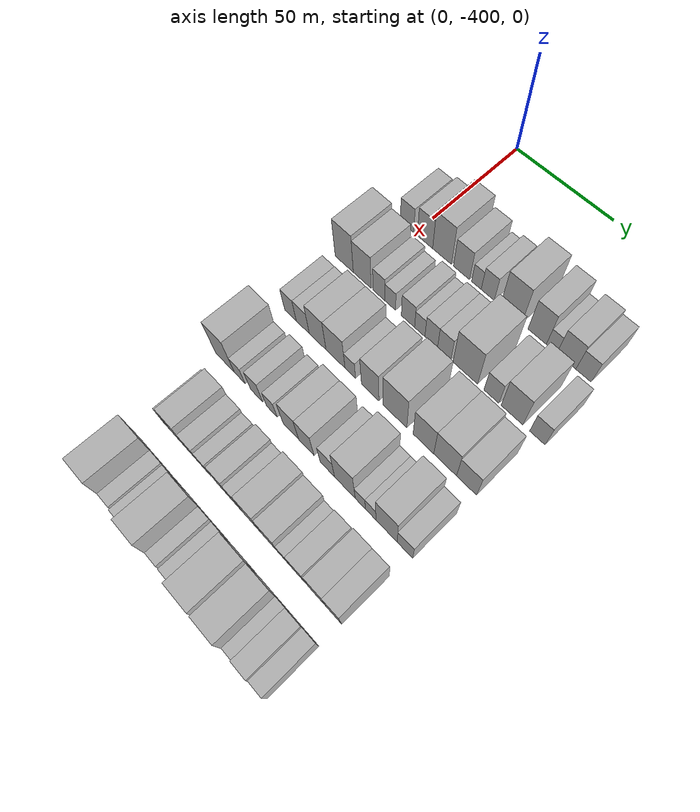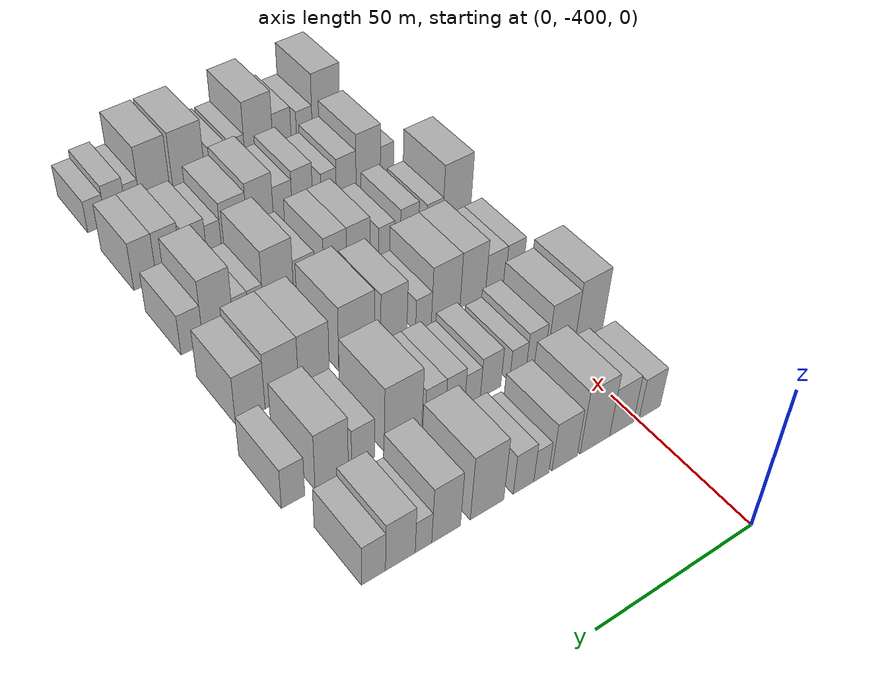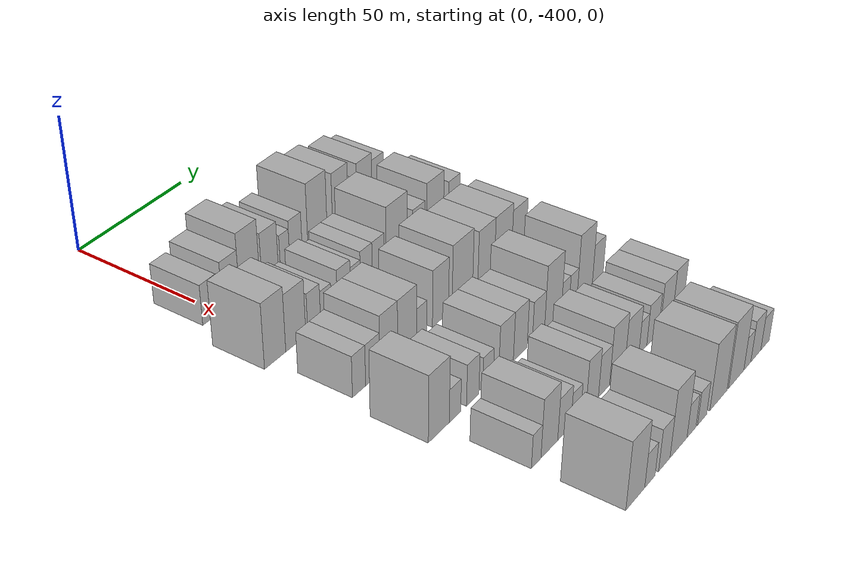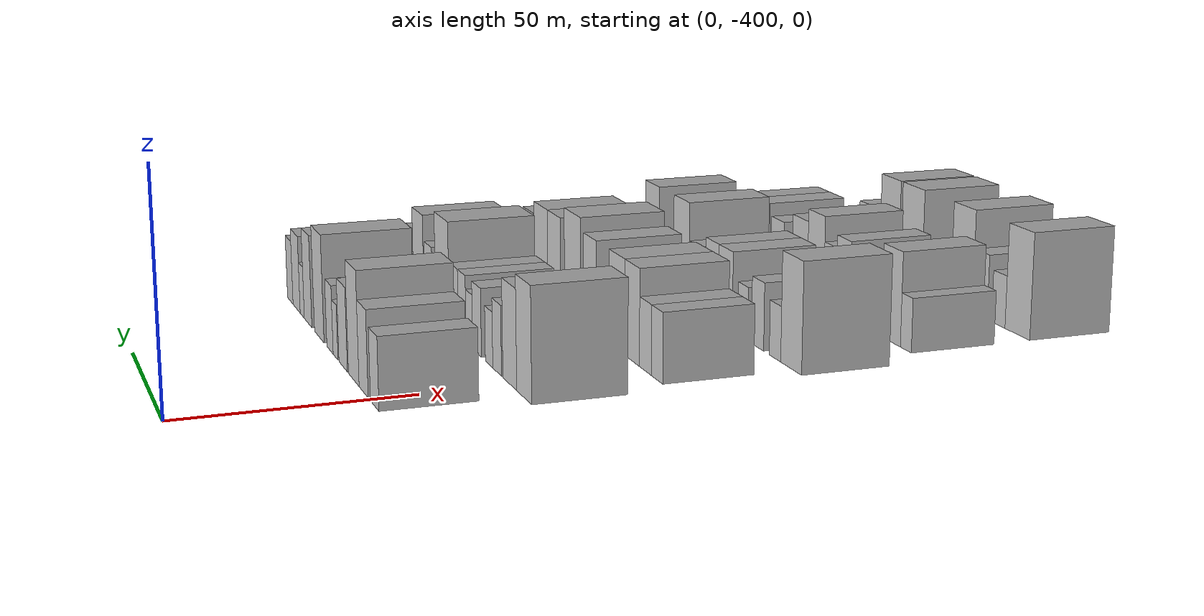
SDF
<sdf version="1.6">
 <world name="default">
  <model name="building_13">
   <static>1</static>
   <pose>50.0000 -404.1647 0 0.000000 0.000000 0.000000</pose>
   <link name="link">
    <pose>0 0 7.50 0 0 0</pose>
    <collision name="collision"><geometry><box><size>20.0000 7.3594 15.0000</size></box></geometry></collision>
    <visual name="visual">
     <cast_shadows>0</cast_shadows>
     <geometry><box><size>20.0000 7.3594 15.0000</size></box></geometry>
     <material>
      <script>
       <uri>model://HANNAS_wall/materials/scripts</uri>
       <uri>model://HANNAS_wall/materials/textures</uri>
       <name>vrc/HANNAS_wall</name>
      </script>
     </material>
    </visual>
   </link>
  </model>
  <model name="building_14">
   <static>1</static>
   <pose>50.0000 -394.3935 0 0.000000 0.000000 0.000000</pose>
   <link name="link">
    <pose>0 0 9.00 0 0 0</pose>
    <collision name="collision"><geometry><box><size>20.0000 8.1831 18.0000</size></box></geometry></collision>
    <visual name="visual">
     <cast_shadows>0</cast_shadows>
     <geometry><box><size>20.0000 8.1831 18.0000</size></box></geometry>
     <material>
      <script>
       <uri>model://HANNAS_wall/materials/scripts</uri>
       <uri>model://HANNAS_wall/materials/textures</uri>
       <name>vrc/HANNAS_wall</name>
      </script>
     </material>
    </visual>
   </link>
  </model>
  <model name="building_15">
   <static>1</static>
   <pose>50.0000 -385.3298 0 0.000000 0.000000 0.000000</pose>
   <link name="link">
    <pose>0 0 12.00 0 0 0</pose>
    <collision name="collision"><geometry><box><size>20.0000 9.9443 24.0000</size></box></geometry></collision>
    <visual name="visual">
     <cast_shadows>0</cast_shadows>
     <geometry><box><size>20.0000 9.9443 24.0000</size></box></geometry>
     <material>
      <script>
       <uri>model://HANNAS_wall/materials/scripts</uri>
       <uri>model://HANNAS_wall/materials/textures</uri>
       <name>vrc/HANNAS_wall</name>
      </script>
     </material>
    </visual>
   </link>
  </model>
  <model name="building_16">
   <static>1</static>
   <pose>50.0000 -375.1956 0 0.000000 0.000000 0.000000</pose>
   <link name="link">
    <pose>0 0 9.00 0 0 0</pose>
    <collision name="collision"><geometry><box><size>20.0000 8.3240 18.0000</size></box></geometry></collision>
    <visual name="visual">
     <cast_shadows>0</cast_shadows>
     <geometry><box><size>20.0000 8.3240 18.0000</size></box></geometry>
     <material>
      <script>
       <uri>model://HANNAS_wall/materials/scripts</uri>
       <uri>model://HANNAS_wall/materials/textures</uri>
       <name>vrc/HANNAS_wall</name>
      </script>
     </material>
    </visual>
   </link>
  </model>
  <model name="building_17">
   <static>1</static>
   <pose>50.0000 -367.6054 0 0.000000 0.000000 0.000000</pose>
   <link name="link">
    <pose>0 0 6.00 0 0 0</pose>
    <collision name="collision"><geometry><box><size>20.0000 4.8566 12.0000</size></box></geometry></collision>
    <visual name="visual">
     <cast_shadows>0</cast_shadows>
     <geometry><box><size>20.0000 4.8566 12.0000</size></box></geometry>
     <material>
      <script>
       <uri>model://HANNAS_wall/materials/scripts</uri>
       <uri>model://HANNAS_wall/materials/textures</uri>
       <name>vrc/HANNAS_wall</name>
      </script>
     </material>
    </visual>
   </link>
  </model>
  <model name="building_18">
   <static>1</static>
   <pose>50.0000 -361.9061 0 0.000000 0.000000 0.000000</pose>
   <link name="link">
    <pose>0 0 7.50 0 0 0</pose>
    <collision name="collision"><geometry><box><size>20.0000 6.5420 15.0000</size></box></geometry></collision>
    <visual name="visual">
     <cast_shadows>0</cast_shadows>
     <geometry><box><size>20.0000 6.5420 15.0000</size></box></geometry>
     <material>
      <script>
       <uri>model://HANNAS_wall/materials/scripts</uri>
       <uri>model://HANNAS_wall/materials/textures</uri>
       <name>vrc/HANNAS_wall</name>
      </script>
     </material>
    </visual>
   </link>
  </model>
  <model name="building_19">
   <static>1</static>
   <pose>50.0000 -350.4418 0 0.000000 0.000000 0.000000</pose>
   <link name="link">
    <pose>0 0 12.00 0 0 0</pose>
    <collision name="collision"><geometry><box><size>20.0000 10.3866 24.0000</size></box></geometry></collision>
    <visual name="visual">
     <cast_shadows>0</cast_shadows>
     <geometry><box><size>20.0000 10.3866 24.0000</size></box></geometry>
     <material>
      <script>
       <uri>model://HANNAS_wall/materials/scripts</uri>
       <uri>model://HANNAS_wall/materials/textures</uri>
       <name>vrc/HANNAS_wall</name>
      </script>
     </material>
    </visual>
   </link>
  </model>
  <model name="building_20">
   <static>1</static>
   <pose>50.0000 -337.9166 0 0.000000 0.000000 0.000000</pose>
   <link name="link">
    <pose>0 0 10.50 0 0 0</pose>
    <collision name="collision"><geometry><box><size>20.0000 8.6638 21.0000</size></box></geometry></collision>
    <visual name="visual">
     <cast_shadows>0</cast_shadows>
     <geometry><box><size>20.0000 8.6638 21.0000</size></box></geometry>
     <material>
      <script>
       <uri>model://HANNAS_wall/materials/scripts</uri>
       <uri>model://HANNAS_wall/materials/textures</uri>
       <name>vrc/HANNAS_wall</name>
      </script>
     </material>
    </visual>
   </link>
  </model>
  <model name="building_21">
   <static>1</static>
   <pose>50.0000 -331.1371 0 0.000000 0.000000 0.000000</pose>
   <link name="link">
    <pose>0 0 6.00 0 0 0</pose>
    <collision name="collision"><geometry><box><size>20.0000 4.8953 12.0000</size></box></geometry></collision>
    <visual name="visual">
     <cast_shadows>0</cast_shadows>
     <geometry><box><size>20.0000 4.8953 12.0000</size></box></geometry>
     <material>
      <script>
       <uri>model://HANNAS_wall/materials/scripts</uri>
       <uri>model://HANNAS_wall/materials/textures</uri>
       <name>vrc/HANNAS_wall</name>
      </script>
     </material>
    </visual>
   </link>
  </model>
  <model name="building_22">
   <static>1</static>
   <pose>50.0000 -324.3617 0 0.000000 0.000000 0.000000</pose>
   <link name="link">
    <pose>0 0 9.00 0 0 0</pose>
    <collision name="collision"><geometry><box><size>20.0000 8.6555 18.0000</size></box></geometry></collision>
    <visual name="visual">
     <cast_shadows>0</cast_shadows>
     <geometry><box><size>20.0000 8.6555 18.0000</size></box></geometry>
     <material>
      <script>
       <uri>model://HANNAS_wall/materials/scripts</uri>
       <uri>model://HANNAS_wall/materials/textures</uri>
       <name>vrc/HANNAS_wall</name>
      </script>
     </material>
    </visual>
   </link>
  </model>
  <model name="building_23">
   <static>1</static>
   <pose>50.0000 -316.6043 0 0.000000 0.000000 0.000000</pose>
   <link name="link">
    <pose>0 0 7.50 0 0 0</pose>
    <collision name="collision"><geometry><box><size>20.0000 6.8592 15.0000</size></box></geometry></collision>
    <visual name="visual">
     <cast_shadows>0</cast_shadows>
     <geometry><box><size>20.0000 6.8592 15.0000</size></box></geometry>
     <material>
      <script>
       <uri>model://HANNAS_wall/materials/scripts</uri>
       <uri>model://HANNAS_wall/materials/textures</uri>
       <name>vrc/HANNAS_wall</name>
      </script>
     </material>
    </visual>
   </link>
  </model>
  <model name="building_124">
   <static>1</static>
   <pose>79.0000 -408.7023 0 0.000000 0.000000 0.000000</pose>
   <link name="link">
    <pose>0 0 12.00 0 0 0</pose>
    <collision name="collision"><geometry><box><size>20.0000 10.0450 24.0000</size></box></geometry></collision>
    <visual name="visual">
     <cast_shadows>0</cast_shadows>
     <geometry><box><size>20.0000 10.0450 24.0000</size></box></geometry>
     <material>
      <script>
       <uri>model://HANNAS_wall/materials/scripts</uri>
       <uri>model://HANNAS_wall/materials/textures</uri>
       <name>vrc/HANNAS_wall</name>
      </script>
     </material>
    </visual>
   </link>
  </model>
  <model name="building_125">
   <static>1</static>
   <pose>79.0000 -398.8264 0 0.000000 0.000000 0.000000</pose>
   <link name="link">
    <pose>0 0 10.50 0 0 0</pose>
    <collision name="collision"><geometry><box><size>20.0000 9.7070 21.0000</size></box></geometry></collision>
    <visual name="visual">
     <cast_shadows>0</cast_shadows>
     <geometry><box><size>20.0000 9.7070 21.0000</size></box></geometry>
     <material>
      <script>
       <uri>model://HANNAS_wall/materials/scripts</uri>
       <uri>model://HANNAS_wall/materials/textures</uri>
       <name>vrc/HANNAS_wall</name>
      </script>
     </material>
    </visual>
   </link>
  </model>
  <model name="building_126">
   <static>1</static>
   <pose>79.0000 -389.7828 0 0.000000 0.000000 0.000000</pose>
   <link name="link">
    <pose>0 0 7.50 0 0 0</pose>
    <collision name="collision"><geometry><box><size>20.0000 6.3802 15.0000</size></box></geometry></collision>
    <visual name="visual">
     <cast_shadows>0</cast_shadows>
     <geometry><box><size>20.0000 6.3802 15.0000</size></box></geometry>
     <material>
      <script>
       <uri>model://HANNAS_wall/materials/scripts</uri>
       <uri>model://HANNAS_wall/materials/textures</uri>
       <name>vrc/HANNAS_wall</name>
      </script>
     </material>
    </visual>
   </link>
  </model>
  <model name="building_127">
   <static>1</static>
   <pose>79.0000 -383.8144 0 0.000000 0.000000 0.000000</pose>
   <link name="link">
    <pose>0 0 6.00 0 0 0</pose>
    <collision name="collision"><geometry><box><size>20.0000 5.5565 12.0000</size></box></geometry></collision>
    <visual name="visual">
     <cast_shadows>0</cast_shadows>
     <geometry><box><size>20.0000 5.5565 12.0000</size></box></geometry>
     <material>
      <script>
       <uri>model://HANNAS_wall/materials/scripts</uri>
       <uri>model://HANNAS_wall/materials/textures</uri>
       <name>vrc/HANNAS_wall</name>
      </script>
     </material>
    </visual>
   </link>
  </model>
  <model name="building_128">
   <static>1</static>
   <pose>79.0000 -374.6246 0 0.000000 0.000000 0.000000</pose>
   <link name="link">
    <pose>0 0 7.50 0 0 0</pose>
    <collision name="collision"><geometry><box><size>20.0000 6.8232 15.0000</size></box></geometry></collision>
    <visual name="visual">
     <cast_shadows>0</cast_shadows>
     <geometry><box><size>20.0000 6.8232 15.0000</size></box></geometry>
     <material>
      <script>
       <uri>model://HANNAS_wall/materials/scripts</uri>
       <uri>model://HANNAS_wall/materials/textures</uri>
       <name>vrc/HANNAS_wall</name>
      </script>
     </material>
    </visual>
   </link>
  </model>
  <model name="building_129">
   <static>1</static>
   <pose>79.0000 -368.6081 0 0.000000 0.000000 0.000000</pose>
   <link name="link">
    <pose>0 0 6.00 0 0 0</pose>
    <collision name="collision"><geometry><box><size>20.0000 5.2098 12.0000</size></box></geometry></collision>
    <visual name="visual">
     <cast_shadows>0</cast_shadows>
     <geometry><box><size>20.0000 5.2098 12.0000</size></box></geometry>
     <material>
      <script>
       <uri>model://HANNAS_wall/materials/scripts</uri>
       <uri>model://HANNAS_wall/materials/textures</uri>
       <name>vrc/HANNAS_wall</name>
      </script>
     </material>
    </visual>
   </link>
  </model>
  <model name="building_130">
   <static>1</static>
   <pose>79.0000 -362.8582 0 0.000000 0.000000 0.000000</pose>
   <link name="link">
    <pose>0 0 7.50 0 0 0</pose>
    <collision name="collision"><geometry><box><size>20.0000 6.2901 15.0000</size></box></geometry></collision>
    <visual name="visual">
     <cast_shadows>0</cast_shadows>
     <geometry><box><size>20.0000 6.2901 15.0000</size></box></geometry>
     <material>
      <script>
       <uri>model://HANNAS_wall/materials/scripts</uri>
       <uri>model://HANNAS_wall/materials/textures</uri>
       <name>vrc/HANNAS_wall</name>
      </script>
     </material>
    </visual>
   </link>
  </model>
  <model name="building_131">
   <static>1</static>
   <pose>79.0000 -356.4166 0 0.000000 0.000000 0.000000</pose>
   <link name="link">
    <pose>0 0 7.50 0 0 0</pose>
    <collision name="collision"><geometry><box><size>20.0000 6.5931 15.0000</size></box></geometry></collision>
    <visual name="visual">
     <cast_shadows>0</cast_shadows>
     <geometry><box><size>20.0000 6.5931 15.0000</size></box></geometry>
     <material>
      <script>
       <uri>model://HANNAS_wall/materials/scripts</uri>
       <uri>model://HANNAS_wall/materials/textures</uri>
       <name>vrc/HANNAS_wall</name>
      </script>
     </material>
    </visual>
   </link>
  </model>
  <model name="building_132">
   <static>1</static>
   <pose>79.0000 -346.2048 0 0.000000 0.000000 0.000000</pose>
   <link name="link">
    <pose>0 0 12.00 0 0 0</pose>
    <collision name="collision"><geometry><box><size>20.0000 11.8305 24.0000</size></box></geometry></collision>
    <visual name="visual">
     <cast_shadows>0</cast_shadows>
     <geometry><box><size>20.0000 11.8305 24.0000</size></box></geometry>
     <material>
      <script>
       <uri>model://HANNAS_wall/materials/scripts</uri>
       <uri>model://HANNAS_wall/materials/textures</uri>
       <name>vrc/HANNAS_wall</name>
      </script>
     </material>
    </visual>
   </link>
  </model>
  <model name="building_133">
   <static>1</static>
   <pose>79.0000 -333.8037 0 0.000000 0.000000 0.000000</pose>
   <link name="link">
    <pose>0 0 7.50 0 0 0</pose>
    <collision name="collision"><geometry><box><size>20.0000 6.9718 15.0000</size></box></geometry></collision>
    <visual name="visual">
     <cast_shadows>0</cast_shadows>
     <geometry><box><size>20.0000 6.9718 15.0000</size></box></geometry>
     <material>
      <script>
       <uri>model://HANNAS_wall/materials/scripts</uri>
       <uri>model://HANNAS_wall/materials/textures</uri>
       <name>vrc/HANNAS_wall</name>
      </script>
     </material>
    </visual>
   </link>
  </model>
  <model name="building_134">
   <static>1</static>
   <pose>79.0000 -324.3528 0 0.000000 0.000000 0.000000</pose>
   <link name="link">
    <pose>0 0 10.50 0 0 0</pose>
    <collision name="collision"><geometry><box><size>20.0000 9.9298 21.0000</size></box></geometry></collision>
    <visual name="visual">
     <cast_shadows>0</cast_shadows>
     <geometry><box><size>20.0000 9.9298 21.0000</size></box></geometry>
     <material>
      <script>
       <uri>model://HANNAS_wall/materials/scripts</uri>
       <uri>model://HANNAS_wall/materials/textures</uri>
       <name>vrc/HANNAS_wall</name>
      </script>
     </material>
    </visual>
   </link>
  </model>
  <model name="building_135">
   <static>1</static>
   <pose>79.0000 -312.9742 0 0.000000 0.000000 0.000000</pose>
   <link name="link">
    <pose>0 0 7.50 0 0 0</pose>
    <collision name="collision"><geometry><box><size>20.0000 6.8274 15.0000</size></box></geometry></collision>
    <visual name="visual">
     <cast_shadows>0</cast_shadows>
     <geometry><box><size>20.0000 6.8274 15.0000</size></box></geometry>
     <material>
      <script>
       <uri>model://HANNAS_wall/materials/scripts</uri>
       <uri>model://HANNAS_wall/materials/textures</uri>
       <name>vrc/HANNAS_wall</name>
      </script>
     </material>
    </visual>
   </link>
  </model>
  <model name="building_233">
   <static>1</static>
   <pose>108.0000 -406.1952 0 0.000000 0.000000 0.000000</pose>
   <link name="link">
    <pose>0 0 7.50 0 0 0</pose>
    <collision name="collision"><geometry><box><size>20.0000 6.4085 15.0000</size></box></geometry></collision>
    <visual name="visual">
     <cast_shadows>0</cast_shadows>
     <geometry><box><size>20.0000 6.4085 15.0000</size></box></geometry>
     <material>
      <script>
       <uri>model://HANNAS_wall/materials/scripts</uri>
       <uri>model://HANNAS_wall/materials/textures</uri>
       <name>vrc/HANNAS_wall</name>
      </script>
     </material>
    </visual>
   </link>
  </model>
  <model name="building_234">
   <static>1</static>
   <pose>108.0000 -399.4403 0 0.000000 0.000000 0.000000</pose>
   <link name="link">
    <pose>0 0 7.50 0 0 0</pose>
    <collision name="collision"><geometry><box><size>20.0000 7.1014 15.0000</size></box></geometry></collision>
    <visual name="visual">
     <cast_shadows>0</cast_shadows>
     <geometry><box><size>20.0000 7.1014 15.0000</size></box></geometry>
     <material>
      <script>
       <uri>model://HANNAS_wall/materials/scripts</uri>
       <uri>model://HANNAS_wall/materials/textures</uri>
       <name>vrc/HANNAS_wall</name>
      </script>
     </material>
    </visual>
   </link>
  </model>
  <model name="building_235">
   <static>1</static>
   <pose>108.0000 -391.3822 0 0.000000 0.000000 0.000000</pose>
   <link name="link">
    <pose>0 0 10.50 0 0 0</pose>
    <collision name="collision"><geometry><box><size>20.0000 9.0149 21.0000</size></box></geometry></collision>
    <visual name="visual">
     <cast_shadows>0</cast_shadows>
     <geometry><box><size>20.0000 9.0149 21.0000</size></box></geometry>
     <material>
      <script>
       <uri>model://HANNAS_wall/materials/scripts</uri>
       <uri>model://HANNAS_wall/materials/textures</uri>
       <name>vrc/HANNAS_wall</name>
      </script>
     </material>
    </visual>
   </link>
  </model>
  <model name="building_236">
   <static>1</static>
   <pose>108.0000 -381.9022 0 0.000000 0.000000 0.000000</pose>
   <link name="link">
    <pose>0 0 10.50 0 0 0</pose>
    <collision name="collision"><geometry><box><size>20.0000 9.9451 21.0000</size></box></geometry></collision>
    <visual name="visual">
     <cast_shadows>0</cast_shadows>
     <geometry><box><size>20.0000 9.9451 21.0000</size></box></geometry>
     <material>
      <script>
       <uri>model://HANNAS_wall/materials/scripts</uri>
       <uri>model://HANNAS_wall/materials/textures</uri>
       <name>vrc/HANNAS_wall</name>
      </script>
     </material>
    </visual>
   </link>
  </model>
  <model name="building_237">
   <static>1</static>
   <pose>108.0000 -374.2195 0 0.000000 0.000000 0.000000</pose>
   <link name="link">
    <pose>0 0 6.00 0 0 0</pose>
    <collision name="collision"><geometry><box><size>20.0000 5.4203 12.0000</size></box></geometry></collision>
    <visual name="visual">
     <cast_shadows>0</cast_shadows>
     <geometry><box><size>20.0000 5.4203 12.0000</size></box></geometry>
     <material>
      <script>
       <uri>model://HANNAS_wall/materials/scripts</uri>
       <uri>model://HANNAS_wall/materials/textures</uri>
       <name>vrc/HANNAS_wall</name>
      </script>
     </material>
    </visual>
   </link>
  </model>
  <model name="building_238">
   <static>1</static>
   <pose>108.0000 -364.1192 0 0.000000 0.000000 0.000000</pose>
   <link name="link">
    <pose>0 0 10.50 0 0 0</pose>
    <collision name="collision"><geometry><box><size>20.0000 8.7802 21.0000</size></box></geometry></collision>
    <visual name="visual">
     <cast_shadows>0</cast_shadows>
     <geometry><box><size>20.0000 8.7802 21.0000</size></box></geometry>
     <material>
      <script>
       <uri>model://HANNAS_wall/materials/scripts</uri>
       <uri>model://HANNAS_wall/materials/textures</uri>
       <name>vrc/HANNAS_wall</name>
      </script>
     </material>
    </visual>
   </link>
  </model>
  <model name="building_239">
   <static>1</static>
   <pose>108.0000 -351.9240 0 0.000000 0.000000 0.000000</pose>
   <link name="link">
    <pose>0 0 12.00 0 0 0</pose>
    <collision name="collision"><geometry><box><size>20.0000 11.6102 24.0000</size></box></geometry></collision>
    <visual name="visual">
     <cast_shadows>0</cast_shadows>
     <geometry><box><size>20.0000 11.6102 24.0000</size></box></geometry>
     <material>
      <script>
       <uri>model://HANNAS_wall/materials/scripts</uri>
       <uri>model://HANNAS_wall/materials/textures</uri>
       <name>vrc/HANNAS_wall</name>
      </script>
     </material>
    </visual>
   </link>
  </model>
  <model name="building_240">
   <static>1</static>
   <pose>108.0000 -338.2664 0 0.000000 0.000000 0.000000</pose>
   <link name="link">
    <pose>0 0 10.50 0 0 0</pose>
    <collision name="collision"><geometry><box><size>20.0000 9.7052 21.0000</size></box></geometry></collision>
    <visual name="visual">
     <cast_shadows>0</cast_shadows>
     <geometry><box><size>20.0000 9.7052 21.0000</size></box></geometry>
     <material>
      <script>
       <uri>model://HANNAS_wall/materials/scripts</uri>
       <uri>model://HANNAS_wall/materials/textures</uri>
       <name>vrc/HANNAS_wall</name>
      </script>
     </material>
    </visual>
   </link>
  </model>
  <model name="building_241">
   <static>1</static>
   <pose>108.0000 -328.2092 0 0.000000 0.000000 0.000000</pose>
   <link name="link">
    <pose>0 0 10.50 0 0 0</pose>
    <collision name="collision"><geometry><box><size>20.0000 10.4091 21.0000</size></box></geometry></collision>
    <visual name="visual">
     <cast_shadows>0</cast_shadows>
     <geometry><box><size>20.0000 10.4091 21.0000</size></box></geometry>
     <material>
      <script>
       <uri>model://HANNAS_wall/materials/scripts</uri>
       <uri>model://HANNAS_wall/materials/textures</uri>
       <name>vrc/HANNAS_wall</name>
      </script>
     </material>
    </visual>
   </link>
  </model>
  <model name="building_242">
   <static>1</static>
   <pose>108.0000 -318.5263 0 0.000000 0.000000 0.000000</pose>
   <link name="link">
    <pose>0 0 9.00 0 0 0</pose>
    <collision name="collision"><geometry><box><size>20.0000 8.9567 18.0000</size></box></geometry></collision>
    <visual name="visual">
     <cast_shadows>0</cast_shadows>
     <geometry><box><size>20.0000 8.9567 18.0000</size></box></geometry>
     <material>
      <script>
       <uri>model://HANNAS_wall/materials/scripts</uri>
       <uri>model://HANNAS_wall/materials/textures</uri>
       <name>vrc/HANNAS_wall</name>
      </script>
     </material>
    </visual>
   </link>
  </model>
  <model name="building_344">
   <static>1</static>
   <pose>137.0000 -407.9244 0 0.000000 0.000000 0.000000</pose>
   <link name="link">
    <pose>0 0 12.00 0 0 0</pose>
    <collision name="collision"><geometry><box><size>20.0000 10.4452 24.0000</size></box></geometry></collision>
    <visual name="visual">
     <cast_shadows>0</cast_shadows>
     <geometry><box><size>20.0000 10.4452 24.0000</size></box></geometry>
     <material>
      <script>
       <uri>model://HANNAS_wall/materials/scripts</uri>
       <uri>model://HANNAS_wall/materials/textures</uri>
       <name>vrc/HANNAS_wall</name>
      </script>
     </material>
    </visual>
   </link>
  </model>
  <model name="building_345">
   <static>1</static>
   <pose>137.0000 -399.7647 0 0.000000 0.000000 0.000000</pose>
   <link name="link">
    <pose>0 0 6.00 0 0 0</pose>
    <collision name="collision"><geometry><box><size>20.0000 5.8743 12.0000</size></box></geometry></collision>
    <visual name="visual">
     <cast_shadows>0</cast_shadows>
     <geometry><box><size>20.0000 5.8743 12.0000</size></box></geometry>
     <material>
      <script>
       <uri>model://HANNAS_wall/materials/scripts</uri>
       <uri>model://HANNAS_wall/materials/textures</uri>
       <name>vrc/HANNAS_wall</name>
      </script>
     </material>
    </visual>
   </link>
  </model>
  <model name="building_346">
   <static>1</static>
   <pose>137.0000 -390.5567 0 0.000000 0.000000 0.000000</pose>
   <link name="link">
    <pose>0 0 7.50 0 0 0</pose>
    <collision name="collision"><geometry><box><size>20.0000 6.5417 15.0000</size></box></geometry></collision>
    <visual name="visual">
     <cast_shadows>0</cast_shadows>
     <geometry><box><size>20.0000 6.5417 15.0000</size></box></geometry>
     <material>
      <script>
       <uri>model://HANNAS_wall/materials/scripts</uri>
       <uri>model://HANNAS_wall/materials/textures</uri>
       <name>vrc/HANNAS_wall</name>
      </script>
     </material>
    </visual>
   </link>
  </model>
  <model name="building_347">
   <static>1</static>
   <pose>137.0000 -382.4426 0 0.000000 0.000000 0.000000</pose>
   <link name="link">
    <pose>0 0 6.00 0 0 0</pose>
    <collision name="collision"><geometry><box><size>20.0000 5.6864 12.0000</size></box></geometry></collision>
    <visual name="visual">
     <cast_shadows>0</cast_shadows>
     <geometry><box><size>20.0000 5.6864 12.0000</size></box></geometry>
     <material>
      <script>
       <uri>model://HANNAS_wall/materials/scripts</uri>
       <uri>model://HANNAS_wall/materials/textures</uri>
       <name>vrc/HANNAS_wall</name>
      </script>
     </material>
    </visual>
   </link>
  </model>
  <model name="building_348">
   <static>1</static>
   <pose>137.0000 -372.5447 0 0.000000 0.000000 0.000000</pose>
   <link name="link">
    <pose>0 0 9.00 0 0 0</pose>
    <collision name="collision"><geometry><box><size>20.0000 8.1095 18.0000</size></box></geometry></collision>
    <visual name="visual">
     <cast_shadows>0</cast_shadows>
     <geometry><box><size>20.0000 8.1095 18.0000</size></box></geometry>
     <material>
      <script>
       <uri>model://HANNAS_wall/materials/scripts</uri>
       <uri>model://HANNAS_wall/materials/textures</uri>
       <name>vrc/HANNAS_wall</name>
      </script>
     </material>
    </visual>
   </link>
  </model>
  <model name="building_349">
   <static>1</static>
   <pose>137.0000 -364.6077 0 0.000000 0.000000 0.000000</pose>
   <link name="link">
    <pose>0 0 9.00 0 0 0</pose>
    <collision name="collision"><geometry><box><size>20.0000 7.7646 18.0000</size></box></geometry></collision>
    <visual name="visual">
     <cast_shadows>0</cast_shadows>
     <geometry><box><size>20.0000 7.7646 18.0000</size></box></geometry>
     <material>
      <script>
       <uri>model://HANNAS_wall/materials/scripts</uri>
       <uri>model://HANNAS_wall/materials/textures</uri>
       <name>vrc/HANNAS_wall</name>
      </script>
     </material>
    </visual>
   </link>
  </model>
  <model name="building_350">
   <static>1</static>
   <pose>137.0000 -354.1741 0 0.000000 0.000000 0.000000</pose>
   <link name="link">
    <pose>0 0 7.50 0 0 0</pose>
    <collision name="collision"><geometry><box><size>20.0000 7.1026 15.0000</size></box></geometry></collision>
    <visual name="visual">
     <cast_shadows>0</cast_shadows>
     <geometry><box><size>20.0000 7.1026 15.0000</size></box></geometry>
     <material>
      <script>
       <uri>model://HANNAS_wall/materials/scripts</uri>
       <uri>model://HANNAS_wall/materials/textures</uri>
       <name>vrc/HANNAS_wall</name>
      </script>
     </material>
    </visual>
   </link>
  </model>
  <model name="building_351">
   <static>1</static>
   <pose>137.0000 -345.6469 0 0.000000 0.000000 0.000000</pose>
   <link name="link">
    <pose>0 0 12.00 0 0 0</pose>
    <collision name="collision"><geometry><box><size>20.0000 9.9517 24.0000</size></box></geometry></collision>
    <visual name="visual">
     <cast_shadows>0</cast_shadows>
     <geometry><box><size>20.0000 9.9517 24.0000</size></box></geometry>
     <material>
      <script>
       <uri>model://HANNAS_wall/materials/scripts</uri>
       <uri>model://HANNAS_wall/materials/textures</uri>
       <name>vrc/HANNAS_wall</name>
      </script>
     </material>
    </visual>
   </link>
  </model>
  <model name="building_352">
   <static>1</static>
   <pose>137.0000 -338.2634 0 0.000000 0.000000 0.000000</pose>
   <link name="link">
    <pose>0 0 6.00 0 0 0</pose>
    <collision name="collision"><geometry><box><size>20.0000 4.8153 12.0000</size></box></geometry></collision>
    <visual name="visual">
     <cast_shadows>0</cast_shadows>
     <geometry><box><size>20.0000 4.8153 12.0000</size></box></geometry>
     <material>
      <script>
       <uri>model://HANNAS_wall/materials/scripts</uri>
       <uri>model://HANNAS_wall/materials/textures</uri>
       <name>vrc/HANNAS_wall</name>
      </script>
     </material>
    </visual>
   </link>
  </model>
  <model name="building_353">
   <static>1</static>
   <pose>137.0000 -333.4241 0 0.000000 0.000000 0.000000</pose>
   <link name="link">
    <pose>0 0 6.00 0 0 0</pose>
    <collision name="collision"><geometry><box><size>20.0000 4.8634 12.0000</size></box></geometry></collision>
    <visual name="visual">
     <cast_shadows>0</cast_shadows>
     <geometry><box><size>20.0000 4.8634 12.0000</size></box></geometry>
     <material>
      <script>
       <uri>model://HANNAS_wall/materials/scripts</uri>
       <uri>model://HANNAS_wall/materials/textures</uri>
       <name>vrc/HANNAS_wall</name>
      </script>
     </material>
    </visual>
   </link>
  </model>
  <model name="building_354">
   <static>1</static>
   <pose>137.0000 -326.1801 0 0.000000 0.000000 0.000000</pose>
   <link name="link">
    <pose>0 0 12.00 0 0 0</pose>
    <collision name="collision"><geometry><box><size>20.0000 9.6246 24.0000</size></box></geometry></collision>
    <visual name="visual">
     <cast_shadows>0</cast_shadows>
     <geometry><box><size>20.0000 9.6246 24.0000</size></box></geometry>
     <material>
      <script>
       <uri>model://HANNAS_wall/materials/scripts</uri>
       <uri>model://HANNAS_wall/materials/textures</uri>
       <name>vrc/HANNAS_wall</name>
      </script>
     </material>
    </visual>
   </link>
  </model>
  <model name="building_355">
   <static>1</static>
   <pose>137.0000 -317.9141 0 0.000000 0.000000 0.000000</pose>
   <link name="link">
    <pose>0 0 7.50 0 0 0</pose>
    <collision name="collision"><geometry><box><size>20.0000 6.9075 15.0000</size></box></geometry></collision>
    <visual name="visual">
     <cast_shadows>0</cast_shadows>
     <geometry><box><size>20.0000 6.9075 15.0000</size></box></geometry>
     <material>
      <script>
       <uri>model://HANNAS_wall/materials/scripts</uri>
       <uri>model://HANNAS_wall/materials/textures</uri>
       <name>vrc/HANNAS_wall</name>
      </script>
     </material>
    </visual>
   </link>
  </model>
  <model name="building_454">
   <static>1</static>
   <pose>166.0000 -403.2766 0 0.000000 0.000000 0.000000</pose>
   <link name="link">
    <pose>0 0 6.00 0 0 0</pose>
    <collision name="collision"><geometry><box><size>20.0000 5.0288 12.0000</size></box></geometry></collision>
    <visual name="visual">
     <cast_shadows>0</cast_shadows>
     <geometry><box><size>20.0000 5.0288 12.0000</size></box></geometry>
     <material>
      <script>
       <uri>model://HANNAS_wall/materials/scripts</uri>
       <uri>model://HANNAS_wall/materials/textures</uri>
       <name>vrc/HANNAS_wall</name>
      </script>
     </material>
    </visual>
   </link>
  </model>
  <model name="building_455">
   <static>1</static>
   <pose>166.0000 -396.2602 0 0.000000 0.000000 0.000000</pose>
   <link name="link">
    <pose>0 0 10.50 0 0 0</pose>
    <collision name="collision"><geometry><box><size>20.0000 9.0040 21.0000</size></box></geometry></collision>
    <visual name="visual">
     <cast_shadows>0</cast_shadows>
     <geometry><box><size>20.0000 9.0040 21.0000</size></box></geometry>
     <material>
      <script>
       <uri>model://HANNAS_wall/materials/scripts</uri>
       <uri>model://HANNAS_wall/materials/textures</uri>
       <name>vrc/HANNAS_wall</name>
      </script>
     </material>
    </visual>
   </link>
  </model>
  <model name="building_456">
   <static>1</static>
   <pose>166.0000 -388.1539 0 0.000000 0.000000 0.000000</pose>
   <link name="link">
    <pose>0 0 7.50 0 0 0</pose>
    <collision name="collision"><geometry><box><size>20.0000 7.2086 15.0000</size></box></geometry></collision>
    <visual name="visual">
     <cast_shadows>0</cast_shadows>
     <geometry><box><size>20.0000 7.2086 15.0000</size></box></geometry>
     <material>
      <script>
       <uri>model://HANNAS_wall/materials/scripts</uri>
       <uri>model://HANNAS_wall/materials/textures</uri>
       <name>vrc/HANNAS_wall</name>
      </script>
     </material>
    </visual>
   </link>
  </model>
  <model name="building_457">
   <static>1</static>
   <pose>166.0000 -381.7949 0 0.000000 0.000000 0.000000</pose>
   <link name="link">
    <pose>0 0 6.00 0 0 0</pose>
    <collision name="collision"><geometry><box><size>20.0000 5.5093 12.0000</size></box></geometry></collision>
    <visual name="visual">
     <cast_shadows>0</cast_shadows>
     <geometry><box><size>20.0000 5.5093 12.0000</size></box></geometry>
     <material>
      <script>
       <uri>model://HANNAS_wall/materials/scripts</uri>
       <uri>model://HANNAS_wall/materials/textures</uri>
       <name>vrc/HANNAS_wall</name>
      </script>
     </material>
    </visual>
   </link>
  </model>
  <model name="building_458">
   <static>1</static>
   <pose>166.0000 -372.4283 0 0.000000 0.000000 0.000000</pose>
   <link name="link">
    <pose>0 0 9.00 0 0 0</pose>
    <collision name="collision"><geometry><box><size>20.0000 7.2239 18.0000</size></box></geometry></collision>
    <visual name="visual">
     <cast_shadows>0</cast_shadows>
     <geometry><box><size>20.0000 7.2239 18.0000</size></box></geometry>
     <material>
      <script>
       <uri>model://HANNAS_wall/materials/scripts</uri>
       <uri>model://HANNAS_wall/materials/textures</uri>
       <name>vrc/HANNAS_wall</name>
      </script>
     </material>
    </visual>
   </link>
  </model>
  <model name="building_459">
   <static>1</static>
   <pose>166.0000 -365.5537 0 0.000000 0.000000 0.000000</pose>
   <link name="link">
    <pose>0 0 7.50 0 0 0</pose>
    <collision name="collision"><geometry><box><size>20.0000 6.5252 15.0000</size></box></geometry></collision>
    <visual name="visual">
     <cast_shadows>0</cast_shadows>
     <geometry><box><size>20.0000 6.5252 15.0000</size></box></geometry>
     <material>
      <script>
       <uri>model://HANNAS_wall/materials/scripts</uri>
       <uri>model://HANNAS_wall/materials/textures</uri>
       <name>vrc/HANNAS_wall</name>
      </script>
     </material>
    </visual>
   </link>
  </model>
  <model name="building_460">
   <static>1</static>
   <pose>166.0000 -357.7736 0 0.000000 0.000000 0.000000</pose>
   <link name="link">
    <pose>0 0 10.50 0 0 0</pose>
    <collision name="collision"><geometry><box><size>20.0000 9.0350 21.0000</size></box></geometry></collision>
    <visual name="visual">
     <cast_shadows>0</cast_shadows>
     <geometry><box><size>20.0000 9.0350 21.0000</size></box></geometry>
     <material>
      <script>
       <uri>model://HANNAS_wall/materials/scripts</uri>
       <uri>model://HANNAS_wall/materials/textures</uri>
       <name>vrc/HANNAS_wall</name>
      </script>
     </material>
    </visual>
   </link>
  </model>
  <model name="building_461">
   <static>1</static>
   <pose>166.0000 -348.8424 0 0.000000 0.000000 0.000000</pose>
   <link name="link">
    <pose>0 0 9.00 0 0 0</pose>
    <collision name="collision"><geometry><box><size>20.0000 8.8274 18.0000</size></box></geometry></collision>
    <visual name="visual">
     <cast_shadows>0</cast_shadows>
     <geometry><box><size>20.0000 8.8274 18.0000</size></box></geometry>
     <material>
      <script>
       <uri>model://HANNAS_wall/materials/scripts</uri>
       <uri>model://HANNAS_wall/materials/textures</uri>
       <name>vrc/HANNAS_wall</name>
      </script>
     </material>
    </visual>
   </link>
  </model>
  <model name="building_462">
   <static>1</static>
   <pose>166.0000 -341.9459 0 0.000000 0.000000 0.000000</pose>
   <link name="link">
    <pose>0 0 6.00 0 0 0</pose>
    <collision name="collision"><geometry><box><size>20.0000 4.9656 12.0000</size></box></geometry></collision>
    <visual name="visual">
     <cast_shadows>0</cast_shadows>
     <geometry><box><size>20.0000 4.9656 12.0000</size></box></geometry>
     <material>
      <script>
       <uri>model://HANNAS_wall/materials/scripts</uri>
       <uri>model://HANNAS_wall/materials/textures</uri>
       <name>vrc/HANNAS_wall</name>
      </script>
     </material>
    </visual>
   </link>
  </model>
  <model name="building_463">
   <static>1</static>
   <pose>166.0000 -335.7424 0 0.000000 0.000000 0.000000</pose>
   <link name="link">
    <pose>0 0 7.50 0 0 0</pose>
    <collision name="collision"><geometry><box><size>20.0000 7.4416 15.0000</size></box></geometry></collision>
    <visual name="visual">
     <cast_shadows>0</cast_shadows>
     <geometry><box><size>20.0000 7.4416 15.0000</size></box></geometry>
     <material>
      <script>
       <uri>model://HANNAS_wall/materials/scripts</uri>
       <uri>model://HANNAS_wall/materials/textures</uri>
       <name>vrc/HANNAS_wall</name>
      </script>
     </material>
    </visual>
   </link>
  </model>
  <model name="building_464">
   <static>1</static>
   <pose>166.0000 -326.9849 0 0.000000 0.000000 0.000000</pose>
   <link name="link">
    <pose>0 0 9.00 0 0 0</pose>
    <collision name="collision"><geometry><box><size>20.0000 8.0734 18.0000</size></box></geometry></collision>
    <visual name="visual">
     <cast_shadows>0</cast_shadows>
     <geometry><box><size>20.0000 8.0734 18.0000</size></box></geometry>
     <material>
      <script>
       <uri>model://HANNAS_wall/materials/scripts</uri>
       <uri>model://HANNAS_wall/materials/textures</uri>
       <name>vrc/HANNAS_wall</name>
      </script>
     </material>
    </visual>
   </link>
  </model>
  <model name="building_465">
   <static>1</static>
   <pose>166.0000 -319.3090 0 0.000000 0.000000 0.000000</pose>
   <link name="link">
    <pose>0 0 9.00 0 0 0</pose>
    <collision name="collision"><geometry><box><size>20.0000 7.2784 18.0000</size></box></geometry></collision>
    <visual name="visual">
     <cast_shadows>0</cast_shadows>
     <geometry><box><size>20.0000 7.2784 18.0000</size></box></geometry>
     <material>
      <script>
       <uri>model://HANNAS_wall/materials/scripts</uri>
       <uri>model://HANNAS_wall/materials/textures</uri>
       <name>vrc/HANNAS_wall</name>
      </script>
     </material>
    </visual>
   </link>
  </model>
  <model name="building_575">
   <static>1</static>
   <pose>195.0000 -400.2395 0 0.000000 0.000000 0.000000</pose>
   <link name="link">
    <pose>0 0 12.00 0 0 0</pose>
    <collision name="collision"><geometry><box><size>20.0000 10.5158 24.0000</size></box></geometry></collision>
    <visual name="visual">
     <cast_shadows>0</cast_shadows>
     <geometry><box><size>20.0000 10.5158 24.0000</size></box></geometry>
     <material>
      <script>
       <uri>model://HANNAS_wall/materials/scripts</uri>
       <uri>model://HANNAS_wall/materials/textures</uri>
       <name>vrc/HANNAS_wall</name>
      </script>
     </material>
    </visual>
   </link>
  </model>
  <model name="building_576">
   <static>1</static>
   <pose>195.0000 -392.0317 0 0.000000 0.000000 0.000000</pose>
   <link name="link">
    <pose>0 0 6.00 0 0 0</pose>
    <collision name="collision"><geometry><box><size>20.0000 5.8999 12.0000</size></box></geometry></collision>
    <visual name="visual">
     <cast_shadows>0</cast_shadows>
     <geometry><box><size>20.0000 5.8999 12.0000</size></box></geometry>
     <material>
      <script>
       <uri>model://HANNAS_wall/materials/scripts</uri>
       <uri>model://HANNAS_wall/materials/textures</uri>
       <name>vrc/HANNAS_wall</name>
      </script>
     </material>
    </visual>
   </link>
  </model>
  <model name="building_577">
   <static>1</static>
   <pose>195.0000 -383.7221 0 0.000000 0.000000 0.000000</pose>
   <link name="link">
    <pose>0 0 7.50 0 0 0</pose>
    <collision name="collision"><geometry><box><size>20.0000 6.7194 15.0000</size></box></geometry></collision>
    <visual name="visual">
     <cast_shadows>0</cast_shadows>
     <geometry><box><size>20.0000 6.7194 15.0000</size></box></geometry>
     <material>
      <script>
       <uri>model://HANNAS_wall/materials/scripts</uri>
       <uri>model://HANNAS_wall/materials/textures</uri>
       <name>vrc/HANNAS_wall</name>
      </script>
     </material>
    </visual>
   </link>
  </model>
  <model name="building_578">
   <static>1</static>
   <pose>195.0000 -375.2594 0 0.000000 0.000000 0.000000</pose>
   <link name="link">
    <pose>0 0 12.00 0 0 0</pose>
    <collision name="collision"><geometry><box><size>20.0000 10.2059 24.0000</size></box></geometry></collision>
    <visual name="visual">
     <cast_shadows>0</cast_shadows>
     <geometry><box><size>20.0000 10.2059 24.0000</size></box></geometry>
     <material>
      <script>
       <uri>model://HANNAS_wall/materials/scripts</uri>
       <uri>model://HANNAS_wall/materials/textures</uri>
       <name>vrc/HANNAS_wall</name>
      </script>
     </material>
    </visual>
   </link>
  </model>
  <model name="building_579">
   <static>1</static>
   <pose>195.0000 -367.4032 0 0.000000 0.000000 0.000000</pose>
   <link name="link">
    <pose>0 0 6.00 0 0 0</pose>
    <collision name="collision"><geometry><box><size>20.0000 5.5066 12.0000</size></box></geometry></collision>
    <visual name="visual">
     <cast_shadows>0</cast_shadows>
     <geometry><box><size>20.0000 5.5066 12.0000</size></box></geometry>
     <material>
      <script>
       <uri>model://HANNAS_wall/materials/scripts</uri>
       <uri>model://HANNAS_wall/materials/textures</uri>
       <name>vrc/HANNAS_wall</name>
      </script>
     </material>
    </visual>
   </link>
  </model>
  <model name="building_580">
   <static>1</static>
   <pose>195.0000 -360.7945 0 0.000000 0.000000 0.000000</pose>
   <link name="link">
    <pose>0 0 6.00 0 0 0</pose>
    <collision name="collision"><geometry><box><size>20.0000 5.7107 12.0000</size></box></geometry></collision>
    <visual name="visual">
     <cast_shadows>0</cast_shadows>
     <geometry><box><size>20.0000 5.7107 12.0000</size></box></geometry>
     <material>
      <script>
       <uri>model://HANNAS_wall/materials/scripts</uri>
       <uri>model://HANNAS_wall/materials/textures</uri>
       <name>vrc/HANNAS_wall</name>
      </script>
     </material>
    </visual>
   </link>
  </model>
  <model name="building_581">
   <static>1</static>
   <pose>195.0000 -350.3875 0 0.000000 0.000000 0.000000</pose>
   <link name="link">
    <pose>0 0 12.00 0 0 0</pose>
    <collision name="collision"><geometry><box><size>20.0000 11.1033 24.0000</size></box></geometry></collision>
    <visual name="visual">
     <cast_shadows>0</cast_shadows>
     <geometry><box><size>20.0000 11.1033 24.0000</size></box></geometry>
     <material>
      <script>
       <uri>model://HANNAS_wall/materials/scripts</uri>
       <uri>model://HANNAS_wall/materials/textures</uri>
       <name>vrc/HANNAS_wall</name>
      </script>
     </material>
    </visual>
   </link>
  </model>
  <model name="building_582">
   <static>1</static>
   <pose>195.0000 -338.7252 0 0.000000 0.000000 0.000000</pose>
   <link name="link">
    <pose>0 0 12.00 0 0 0</pose>
    <collision name="collision"><geometry><box><size>20.0000 10.2214 24.0000</size></box></geometry></collision>
    <visual name="visual">
     <cast_shadows>0</cast_shadows>
     <geometry><box><size>20.0000 10.2214 24.0000</size></box></geometry>
     <material>
      <script>
       <uri>model://HANNAS_wall/materials/scripts</uri>
       <uri>model://HANNAS_wall/materials/textures</uri>
       <name>vrc/HANNAS_wall</name>
      </script>
     </material>
    </visual>
   </link>
  </model>
  <model name="building_583">
   <static>1</static>
   <pose>195.0000 -331.2134 0 0.000000 0.000000 0.000000</pose>
   <link name="link">
    <pose>0 0 6.00 0 0 0</pose>
    <collision name="collision"><geometry><box><size>20.0000 4.8021 12.0000</size></box></geometry></collision>
    <visual name="visual">
     <cast_shadows>0</cast_shadows>
     <geometry><box><size>20.0000 4.8021 12.0000</size></box></geometry>
     <material>
      <script>
       <uri>model://HANNAS_wall/materials/scripts</uri>
       <uri>model://HANNAS_wall/materials/textures</uri>
       <name>vrc/HANNAS_wall</name>
      </script>
     </material>
    </visual>
   </link>
  </model>
  <model name="building_584">
   <static>1</static>
   <pose>195.0000 -325.3649 0 0.000000 0.000000 0.000000</pose>
   <link name="link">
    <pose>0 0 7.50 0 0 0</pose>
    <collision name="collision"><geometry><box><size>20.0000 6.8951 15.0000</size></box></geometry></collision>
    <visual name="visual">
     <cast_shadows>0</cast_shadows>
     <geometry><box><size>20.0000 6.8951 15.0000</size></box></geometry>
     <material>
      <script>
       <uri>model://HANNAS_wall/materials/scripts</uri>
       <uri>model://HANNAS_wall/materials/textures</uri>
       <name>vrc/HANNAS_wall</name>
      </script>
     </material>
    </visual>
   </link>
  </model>
  <model name="building_585">
   <static>1</static>
   <pose>195.0000 -318.9174 0 0.000000 0.000000 0.000000</pose>
   <link name="link">
    <pose>0 0 6.00 0 0 0</pose>
    <collision name="collision"><geometry><box><size>20.0000 5.9999 12.0000</size></box></geometry></collision>
    <visual name="visual">
     <cast_shadows>0</cast_shadows>
     <geometry><box><size>20.0000 5.9999 12.0000</size></box></geometry>
     <material>
      <script>
       <uri>model://HANNAS_wall/materials/scripts</uri>
       <uri>model://HANNAS_wall/materials/textures</uri>
       <name>vrc/HANNAS_wall</name>
      </script>
     </material>
    </visual>
   </link>
  </model>
 </world>
</sdf>
